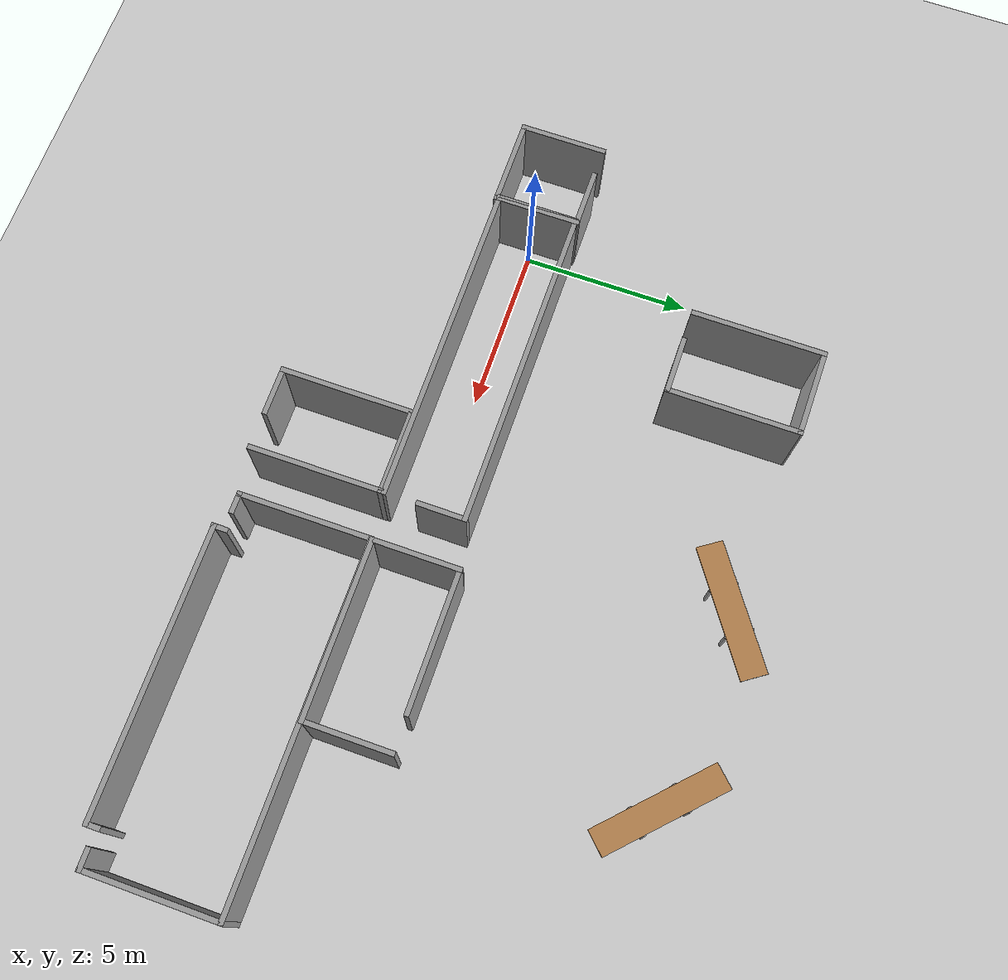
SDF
<sdf version="1.6">
 <world name="default">
  <model name="ground_plane">
   <static>1</static>
   <link name="link">
    <collision name="collision">
     <geometry><plane><normal>0 0 1</normal><size>100 100</size></plane></geometry>
     <surface>
      <contact><collide_bitmask>65535</collide_bitmask></contact>
      <friction><ode><mu>100</mu><mu2>50</mu2></ode></friction>
     </surface>
    </collision>
    <visual name="visual">
     <cast_shadows>0</cast_shadows>
     <geometry><plane><normal>0 0 1</normal><size>100 100</size></plane></geometry>
     <material>
      <script><uri>file://media/materials/scripts/gazebo.material</uri><name>Gazebo/Grey</name></script>
     </material>
    </visual>
   </link>
  </model>
  <model name="cubicle_3">
   <pose>8.03874 -3.16109 0 0 -0 0</pose>
   <link name="Wall_3">
    <collision name="Wall_3_Collision">
     <geometry><box><size>4 0.15 2.5</size></box></geometry>
     <pose>0 0 1.25 0 -0 0</pose>
    </collision>
    <visual name="Wall_3_Visual">
     <pose>0 0 1.25 0 -0 0</pose>
     <geometry><box><size>4 0.15 2.5</size></box></geometry>
     <material>
      <script><uri>file://media/materials/scripts/gazebo.material</uri><name>Gazebo/Grey</name></script>
      <ambient>1 1 1 1</ambient>
     </material>
     <meta><layer>0</layer></meta>
    </visual>
    <pose>-1.225 0 0 0 -0 -1.5708</pose>
   </link>
   <link name="Wall_4">
    <collision name="Wall_4_Collision">
     <geometry><box><size>1.5 0.15 2.5</size></box></geometry>
     <pose>0 0 1.25 0 -0 0</pose>
    </collision>
    <visual name="Wall_4_Visual">
     <pose>0 0 1.25 0 -0 0</pose>
     <geometry><box><size>1.5 0.15 2.5</size></box></geometry>
     <material>
      <script><uri>file://media/materials/scripts/gazebo.material</uri><name>Gazebo/Grey</name></script>
      <ambient>1 1 1 1</ambient>
     </material>
     <meta><layer>0</layer></meta>
    </visual>
    <pose>-0.55 -1.925 0 0 -0 0</pose>
   </link>
   <link name="Wall_6">
    <collision name="Wall_6_Collision">
     <geometry><box><size>4 0.15 2.5</size></box></geometry>
     <pose>0 0 1.25 0 -0 0</pose>
    </collision>
    <visual name="Wall_6_Visual">
     <pose>0 0 1.25 0 -0 0</pose>
     <geometry><box><size>4 0.15 2.5</size></box></geometry>
     <material>
      <script><uri>file://media/materials/scripts/gazebo.material</uri><name>Gazebo/Grey</name></script>
      <ambient>1 1 1 1</ambient>
     </material>
     <meta><layer>0</layer></meta>
    </visual>
    <pose>1.225 0 0 0 -0 1.5708</pose>
   </link>
   <link name="Wall_7">
    <collision name="Wall_7_Collision">
     <geometry><box><size>2.6 0.15 2.5</size></box></geometry>
     <pose>0 0 1.25 0 -0 0</pose>
    </collision>
    <visual name="Wall_7_Visual">
     <pose>0 0 1.25 0 -0 0</pose>
     <geometry><box><size>2.6 0.15 2.5</size></box></geometry>
     <material>
      <script><uri>file://media/materials/scripts/gazebo.material</uri><name>Gazebo/Grey</name></script>
      <ambient>1 1 1 1</ambient>
     </material>
     <meta><layer>0</layer></meta>
    </visual>
    <pose>-0 1.925 0 0 -0 3.14159</pose>
   </link>
   <static>1</static>
  </model>
  <model name="102Room">
   <pose>15.8772 -3.07536 0 0 -0 0</pose>
   <link name="Wall_11">
    <collision name="Wall_11_Collision">
     <geometry><box><size>8.5 0.15 2.5</size></box></geometry>
     <pose>0 0 1.25 0 -0 0</pose>
    </collision>
    <visual name="Wall_11_Visual">
     <pose>0 0 1.25 0 -0 0</pose>
     <geometry><box><size>8.5 0.15 2.5</size></box></geometry>
     <material>
      <script><uri>file://media/materials/scripts/gazebo.material</uri><name>Gazebo/Grey</name></script>
      <ambient>1 1 1 1</ambient>
     </material>
     <meta><layer>0</layer></meta>
    </visual>
    <pose>-0.003989 -2.07244 0 0 -0 0</pose>
   </link>
   <link name="Wall_13">
    <collision name="Wall_13_Collision">
     <geometry><box><size>0.667 0.15 2.5</size></box></geometry>
     <pose>0 0 1.25 0 -0 0</pose>
    </collision>
    <visual name="Wall_13_Visual">
     <pose>0 0 1.25 0 -0 0</pose>
     <geometry><box><size>0.667 0.15 2.5</size></box></geometry>
     <material>
      <script><uri>file://media/materials/scripts/gazebo.material</uri><name>Gazebo/Grey</name></script>
      <ambient>1 1 1 1</ambient>
     </material>
     <meta><layer>0</layer></meta>
    </visual>
    <pose>4.99225 -1.76994 0 0 -0 0</pose>
   </link>
   <link name="Wall_15">
    <collision name="Wall_15_Collision">
     <geometry><box><size>4 0.15 2.5</size></box></geometry>
     <pose>0 0 1.25 0 -0 0</pose>
    </collision>
    <visual name="Wall_15_Visual">
     <pose>0 0 1.25 0 -0 0</pose>
     <geometry><box><size>4 0.15 2.5</size></box></geometry>
     <material>
      <script><uri>file://media/materials/scripts/gazebo.material</uri><name>Gazebo/Grey</name></script>
      <ambient>1 1 1 1</ambient>
     </material>
     <meta><layer>0</layer></meta>
    </visual>
    <pose>5.25087 0.155063 0 0 -0 1.57073</pose>
   </link>
   <link name="Wall_16">
    <collision name="Wall_16_Collision">
     <geometry><box><size>10.652 0.15 2.5</size></box></geometry>
     <pose>0 0 1.25 0 -0 0</pose>
    </collision>
    <visual name="Wall_16_Visual">
     <pose>0 0 1.25 0 -0 0</pose>
     <geometry><box><size>10.652 0.15 2.5</size></box></geometry>
     <material>
      <script><uri>file://media/materials/scripts/gazebo.material</uri><name>Gazebo/Grey</name></script>
      <ambient>1 1 1 1</ambient>
     </material>
     <meta><layer>0</layer></meta>
    </visual>
    <pose>-2e-06 2.08006 0 0 -0 3.14159</pose>
   </link>
   <link name="Wall_17">
    <collision name="Wall_17_Collision">
     <geometry><box><size>4 0.15 2.5</size></box></geometry>
     <pose>0 0 1.25 0 -0 0</pose>
    </collision>
    <visual name="Wall_17_Visual">
     <pose>0 0 1.25 0 -0 0</pose>
     <geometry><box><size>4 0.15 2.5</size></box></geometry>
     <material>
      <script><uri>file://media/materials/scripts/gazebo.material</uri><name>Gazebo/Grey</name></script>
      <ambient>1 1 1 1</ambient>
     </material>
     <meta><layer>0</layer></meta>
    </visual>
    <pose>-5.251 0.155063 0 0 -0 -1.5708</pose>
   </link>
   <link name="Wall_23">
    <collision name="Wall_23_Collision">
     <geometry><box><size>0.5 0.15 2.5</size></box></geometry>
     <pose>0 0 1.25 0 -0 0</pose>
    </collision>
    <visual name="Wall_23_Visual">
     <pose>0 0 1.25 0 -0 0</pose>
     <geometry><box><size>0.5 0.15 2.5</size></box></geometry>
     <material>
      <script><uri>file://media/materials/scripts/gazebo.material</uri><name>Gazebo/Grey</name></script>
      <ambient>1 1 1 1</ambient>
     </material>
     <meta><layer>0</layer></meta>
    </visual>
    <pose>-4.17899 -1.90507 0 0 -0 1.5708</pose>
   </link>
   <link name="Wall_25">
    <collision name="Wall_25_Collision">
     <geometry><box><size>0.469506 0.15 2.5</size></box></geometry>
     <pose>0 0 1.25 0 -0 0</pose>
    </collision>
    <visual name="Wall_25_Visual">
     <pose>0 0 1.25 0 -0 0</pose>
     <geometry><box><size>0.469506 0.15 2.5</size></box></geometry>
     <material>
      <script><uri>file://media/materials/scripts/gazebo.material</uri><name>Gazebo/Grey</name></script>
      <ambient>1 1 1 1</ambient>
     </material>
     <meta><layer>0</layer></meta>
    </visual>
    <pose>4.17101 -1.90507 0 0 -0 1.5708</pose>
   </link>
   <link name="Wall_9">
    <collision name="Wall_9_Collision">
     <geometry><box><size>0.667 0.15 2.5</size></box></geometry>
     <pose>0 0 1.25 0 -0 0</pose>
    </collision>
    <visual name="Wall_9_Visual">
     <pose>0 0 1.25 0 -0 0</pose>
     <geometry><box><size>0.667 0.15 2.5</size></box></geometry>
     <material>
      <script><uri>file://media/materials/scripts/gazebo.material</uri><name>Gazebo/Grey</name></script>
      <ambient>1 1 1 1</ambient>
     </material>
     <meta><layer>0</layer></meta>
    </visual>
    <pose>-4.9925 -1.76994 0 0 -0 0</pose>
   </link>
   <static>1</static>
  </model>
  <model name="104_0">
   <pose>-1.62055 0.02289 0 0 -0 0</pose>
   <link name="Wall_11">
    <collision name="Wall_11_Collision">
     <geometry><box><size>2.667 0.15 2.5</size></box></geometry>
     <pose>0 0 1.25 0 -0 0</pose>
    </collision>
    <visual name="Wall_11_Visual">
     <pose>0 0 1.25 0 -0 0</pose>
     <geometry><box><size>2.667 0.15 2.5</size></box></geometry>
     <material>
      <script><uri>file://media/materials/scripts/gazebo.material</uri><name>Gazebo/Grey</name></script>
      <ambient>1 1 1 1</ambient>
     </material>
     <meta><layer>0</layer></meta>
    </visual>
    <pose>0 -1.23537 0 0 -0 0</pose>
   </link>
   <link name="Wall_12">
    <collision name="Wall_12_Collision">
     <geometry><box><size>2.62074 0.15 2.5</size></box></geometry>
     <pose>0 0 1.25 0 -0 0</pose>
    </collision>
    <visual name="Wall_12_Visual">
     <pose>0 0 1.25 0 -0 0</pose>
     <geometry><box><size>2.62074 0.15 2.5</size></box></geometry>
     <material>
      <script><uri>file://media/materials/scripts/gazebo.material</uri><name>Gazebo/Grey</name></script>
      <ambient>1 1 1 1</ambient>
     </material>
     <meta><layer>0</layer></meta>
    </visual>
    <pose>1.2585 0 0 0 -0 1.5708</pose>
   </link>
   <link name="Wall_14">
    <collision name="Wall_14_Collision">
     <geometry><box><size>2.62074 0.15 2.5</size></box></geometry>
     <pose>0 0 1.25 0 -0 0</pose>
    </collision>
    <visual name="Wall_14_Visual">
     <pose>0 0 1.25 0 -0 0</pose>
     <geometry><box><size>2.62074 0.15 2.5</size></box></geometry>
     <material>
      <script><uri>file://media/materials/scripts/gazebo.material</uri><name>Gazebo/Grey</name></script>
      <ambient>1 1 1 1</ambient>
     </material>
     <meta><layer>0</layer></meta>
    </visual>
    <pose>-1.2585 0 0 0 -0 -1.5708</pose>
   </link>
   <link name="Wall_18">
    <collision name="Wall_18_Collision">
     <geometry><box><size>1.8 0.15 2.5</size></box></geometry>
     <pose>0 0 1.25 0 -0 0</pose>
    </collision>
    <visual name="Wall_18_Visual">
     <pose>0 0 1.25 0 -0 0</pose>
     <geometry><box><size>1.8 0.15 2.5</size></box></geometry>
     <material>
      <script><uri>file://media/materials/scripts/gazebo.material</uri><name>Gazebo/Grey</name></script>
      <ambient>1 1 1 1</ambient>
     </material>
     <meta><layer>0</layer></meta>
    </visual>
    <pose>0.433499 1.23537 0 0 -0 3.14159</pose>
   </link>
   <static>1</static>
  </model>
  <model name="tables">
   <link name="link_clone_clone_0_clone_1_clone">
    <inertial>
     <inertia><ixx>0</ixx><ixy>0</ixy><ixz>0</ixz><iyy>0</iyy><iyz>0</iyz><izz>0</izz></inertia>
     <mass>0</mass>
    </inertial>
    <pose>2.80476 -6.06691 0 0 0 -0.769288</pose>
    <visual name="back_right_leg">
     <pose>-0.68 -0.38 0.5 0 -0 0</pose>
     <geometry><cylinder><radius>0.05252</radius><length>1</length></cylinder></geometry>
     <material>
      <script><uri>file://media/materials/scripts/gazebo.material</uri><name>Gazebo/Grey</name></script>
      <shader type="pixel"/>
     </material>
    </visual>
    <visual name="back_left_leg">
     <pose>-0.68 0.38 0.5 0 -0 0</pose>
     <geometry><cylinder><radius>0.05252</radius><length>1</length></cylinder></geometry>
     <material>
      <script><uri>file://media/materials/scripts/gazebo.material</uri><name>Gazebo/Grey</name></script>
      <shader type="pixel"/>
     </material>
    </visual>
    <visual name="front_left_leg">
     <pose>0.68 0.38 0.5 0 -0 0</pose>
     <geometry><cylinder><radius>0.05252</radius><length>1</length></cylinder></geometry>
     <material>
      <script><uri>file://media/materials/scripts/gazebo.material</uri><name>Gazebo/Grey</name></script>
      <shader type="pixel"/>
     </material>
    </visual>
    <visual name="front_right_leg">
     <pose>0.68 -0.38 0.5 0 -0 0</pose>
     <geometry><cylinder><radius>0.05252</radius><length>1</length></cylinder></geometry>
     <material>
      <script><uri>file://media/materials/scripts/gazebo.material</uri><name>Gazebo/Grey</name></script>
      <shader type="pixel"/>
     </material>
    </visual>
    <visual name="visual1">
     <pose>0 0 1 0 -0 0</pose>
     <geometry><box><size>3.93335 0.8 0.03</size></box></geometry>
     <material>
      <script><uri>file://media/materials/scripts/gazebo.material</uri><name>Gazebo/Wood</name></script>
      <shader type="pixel"/>
     </material>
    </visual>
    <collision name="surface">
     <pose>0 0 1 0 -0 0</pose>
     <geometry><box><size>3.93335 0.8 0.03</size></box></geometry>
     <surface>
      <friction>
       <ode><mu>1</mu><mu2>1</mu2><fdir1>0 0 0</fdir1><slip1>0</slip1><slip2>0</slip2></ode>
       <torsional>
        <coefficient>1</coefficient>
        <patch_radius>0</patch_radius>
        <surface_radius>0</surface_radius>
        <use_patch_radius>1</use_patch_radius>
        <ode><slip>0</slip></ode>
       </torsional>
      </friction>
      <bounce><restitution_coefficient>0</restitution_coefficient><threshold>1e+06</threshold></bounce>
      <contact>
       <collide_without_contact>0</collide_without_contact>
       <collide_without_contact_bitmask>1</collide_without_contact_bitmask>
       <collide_bitmask>1</collide_bitmask>
       <ode>
        <soft_cfm>0</soft_cfm>
        <soft_erp>0.2</soft_erp>
        <kp>1e+13</kp>
        <kd>1</kd>
        <max_vel>0.01</max_vel>
        <min_depth>0</min_depth>
       </ode>
       <bullet>
        <split_impulse>1</split_impulse>
        <split_impulse_penetration_threshold>-0.01</split_impulse_penetration_threshold>
        <soft_cfm>0</soft_cfm>
        <soft_erp>0.2</soft_erp>
        <kp>1e+13</kp>
        <kd>1</kd>
       </bullet>
      </contact>
     </surface>
    </collision>
    <collision name="front_left_leg_0">
     <pose>0.68 0.38 0.5 0 -0 0</pose>
     <geometry><cylinder><radius>0.05252</radius><length>1</length></cylinder></geometry>
     <surface>
      <friction>
       <ode><mu>1</mu><mu2>1</mu2><fdir1>0 0 0</fdir1><slip1>0</slip1><slip2>0</slip2></ode>
       <torsional>
        <coefficient>1</coefficient>
        <patch_radius>0</patch_radius>
        <surface_radius>0</surface_radius>
        <use_patch_radius>1</use_patch_radius>
        <ode><slip>0</slip></ode>
       </torsional>
      </friction>
      <bounce><restitution_coefficient>0</restitution_coefficient><threshold>1e+06</threshold></bounce>
      <contact>
       <collide_without_contact>0</collide_without_contact>
       <collide_without_contact_bitmask>1</collide_without_contact_bitmask>
       <collide_bitmask>1</collide_bitmask>
       <ode>
        <soft_cfm>0</soft_cfm>
        <soft_erp>0.2</soft_erp>
        <kp>1e+13</kp>
        <kd>1</kd>
        <max_vel>0.01</max_vel>
        <min_depth>0</min_depth>
       </ode>
       <bullet>
        <split_impulse>1</split_impulse>
        <split_impulse_penetration_threshold>-0.01</split_impulse_penetration_threshold>
        <soft_cfm>0</soft_cfm>
        <soft_erp>0.2</soft_erp>
        <kp>1e+13</kp>
        <kd>1</kd>
       </bullet>
      </contact>
     </surface>
    </collision>
    <collision name="back_left_leg_0">
     <pose>-0.68 0.38 0.5 0 -0 0</pose>
     <geometry><cylinder><radius>0.05252</radius><length>1</length></cylinder></geometry>
     <surface>
      <friction>
       <ode><mu>1</mu><mu2>1</mu2><fdir1>0 0 0</fdir1><slip1>0</slip1><slip2>0</slip2></ode>
       <torsional>
        <coefficient>1</coefficient>
        <patch_radius>0</patch_radius>
        <surface_radius>0</surface_radius>
        <use_patch_radius>1</use_patch_radius>
        <ode><slip>0</slip></ode>
       </torsional>
      </friction>
      <bounce><restitution_coefficient>0</restitution_coefficient><threshold>1e+06</threshold></bounce>
      <contact>
       <collide_without_contact>0</collide_without_contact>
       <collide_without_contact_bitmask>1</collide_without_contact_bitmask>
       <collide_bitmask>1</collide_bitmask>
       <ode>
        <soft_cfm>0</soft_cfm>
        <soft_erp>0.2</soft_erp>
        <kp>1e+13</kp>
        <kd>1</kd>
        <max_vel>0.01</max_vel>
        <min_depth>0</min_depth>
       </ode>
       <bullet>
        <split_impulse>1</split_impulse>
        <split_impulse_penetration_threshold>-0.01</split_impulse_penetration_threshold>
        <soft_cfm>0</soft_cfm>
        <soft_erp>0.2</soft_erp>
        <kp>1e+13</kp>
        <kd>1</kd>
       </bullet>
      </contact>
     </surface>
    </collision>
    <collision name="front_right_leg_0">
     <pose>0.68 -0.38 0.5 0 -0 0</pose>
     <geometry><cylinder><radius>0.05252</radius><length>1</length></cylinder></geometry>
     <surface>
      <friction>
       <ode><mu>1</mu><mu2>1</mu2><fdir1>0 0 0</fdir1><slip1>0</slip1><slip2>0</slip2></ode>
       <torsional>
        <coefficient>1</coefficient>
        <patch_radius>0</patch_radius>
        <surface_radius>0</surface_radius>
        <use_patch_radius>1</use_patch_radius>
        <ode><slip>0</slip></ode>
       </torsional>
      </friction>
      <bounce><restitution_coefficient>0</restitution_coefficient><threshold>1e+06</threshold></bounce>
      <contact>
       <collide_without_contact>0</collide_without_contact>
       <collide_without_contact_bitmask>1</collide_without_contact_bitmask>
       <collide_bitmask>1</collide_bitmask>
       <ode>
        <soft_cfm>0</soft_cfm>
        <soft_erp>0.2</soft_erp>
        <kp>1e+13</kp>
        <kd>1</kd>
        <max_vel>0.01</max_vel>
        <min_depth>0</min_depth>
       </ode>
       <bullet>
        <split_impulse>1</split_impulse>
        <split_impulse_penetration_threshold>-0.01</split_impulse_penetration_threshold>
        <soft_cfm>0</soft_cfm>
        <soft_erp>0.2</soft_erp>
        <kp>1e+13</kp>
        <kd>1</kd>
       </bullet>
      </contact>
     </surface>
    </collision>
    <collision name="back_right_leg_0">
     <pose>-0.68 -0.38 0.5 0 -0 0</pose>
     <geometry><cylinder><radius>0.05252</radius><length>1</length></cylinder></geometry>
     <surface>
      <friction>
       <ode><mu>1</mu><mu2>1</mu2><fdir1>0 0 0</fdir1><slip1>0</slip1><slip2>0</slip2></ode>
       <torsional>
        <coefficient>1</coefficient>
        <patch_radius>0</patch_radius>
        <surface_radius>0</surface_radius>
        <use_patch_radius>1</use_patch_radius>
        <ode><slip>0</slip></ode>
       </torsional>
      </friction>
      <bounce><restitution_coefficient>0</restitution_coefficient><threshold>1e+06</threshold></bounce>
      <contact>
       <collide_without_contact>0</collide_without_contact>
       <collide_without_contact_bitmask>1</collide_without_contact_bitmask>
       <collide_bitmask>1</collide_bitmask>
       <ode>
        <soft_cfm>0</soft_cfm>
        <soft_erp>0.2</soft_erp>
        <kp>1e+13</kp>
        <kd>1</kd>
        <max_vel>0.01</max_vel>
        <min_depth>0</min_depth>
       </ode>
       <bullet>
        <split_impulse>1</split_impulse>
        <split_impulse_penetration_threshold>-0.01</split_impulse_penetration_threshold>
        <soft_cfm>0</soft_cfm>
        <soft_erp>0.2</soft_erp>
        <kp>1e+13</kp>
        <kd>1</kd>
       </bullet>
      </contact>
     </surface>
    </collision>
   </link>
   <link name="link_clone_clone_0_clone_1_clone_0">
    <inertial>
     <inertia><ixx>0</ixx><ixy>0</ixy><ixz>0</ixz><iyy>0</iyy><iyz>0</iyz><izz>0</izz></inertia>
     <mass>0</mass>
    </inertial>
    <pose>-3.02405 -5.78896 0 0 -0 0.604453</pose>
    <visual name="back_right_leg">
     <pose>-0.68 -0.38 0.5 0 -0 0</pose>
     <geometry><cylinder><radius>0.05252</radius><length>1</length></cylinder></geometry>
     <material>
      <script><uri>file://media/materials/scripts/gazebo.material</uri><name>Gazebo/Grey</name></script>
      <shader type="pixel"/>
     </material>
    </visual>
    <visual name="back_left_leg">
     <pose>-0.68 0.38 0.5 0 -0 0</pose>
     <geometry><cylinder><radius>0.05252</radius><length>1</length></cylinder></geometry>
     <material>
      <script><uri>file://media/materials/scripts/gazebo.material</uri><name>Gazebo/Grey</name></script>
      <shader type="pixel"/>
     </material>
    </visual>
    <visual name="front_left_leg">
     <pose>0.68 0.38 0.5 0 -0 0</pose>
     <geometry><cylinder><radius>0.05252</radius><length>1</length></cylinder></geometry>
     <material>
      <script><uri>file://media/materials/scripts/gazebo.material</uri><name>Gazebo/Grey</name></script>
      <shader type="pixel"/>
     </material>
    </visual>
    <visual name="front_right_leg">
     <pose>0.68 -0.38 0.5 0 -0 0</pose>
     <geometry><cylinder><radius>0.05252</radius><length>1</length></cylinder></geometry>
     <material>
      <script><uri>file://media/materials/scripts/gazebo.material</uri><name>Gazebo/Grey</name></script>
      <shader type="pixel"/>
     </material>
    </visual>
    <visual name="visual1">
     <pose>0 0 1 0 -0 0</pose>
     <geometry><box><size>3.93335 0.8 0.03</size></box></geometry>
     <material>
      <script><uri>file://media/materials/scripts/gazebo.material</uri><name>Gazebo/Wood</name></script>
      <shader type="pixel"/>
     </material>
    </visual>
    <collision name="back_left_leg_0">
     <pose>-0.68 0.38 0.5 0 -0 0</pose>
     <geometry><cylinder><radius>0.05252</radius><length>1</length></cylinder></geometry>
     <surface>
      <friction>
       <ode><mu>1</mu><mu2>1</mu2><fdir1>0 0 0</fdir1><slip1>0</slip1><slip2>0</slip2></ode>
       <torsional>
        <coefficient>1</coefficient>
        <patch_radius>0</patch_radius>
        <surface_radius>0</surface_radius>
        <use_patch_radius>1</use_patch_radius>
        <ode><slip>0</slip></ode>
       </torsional>
      </friction>
      <bounce><restitution_coefficient>0</restitution_coefficient><threshold>1e+06</threshold></bounce>
      <contact>
       <collide_without_contact>0</collide_without_contact>
       <collide_without_contact_bitmask>1</collide_without_contact_bitmask>
       <collide_bitmask>1</collide_bitmask>
       <ode>
        <soft_cfm>0</soft_cfm>
        <soft_erp>0.2</soft_erp>
        <kp>1e+13</kp>
        <kd>1</kd>
        <max_vel>0.01</max_vel>
        <min_depth>0</min_depth>
       </ode>
       <bullet>
        <split_impulse>1</split_impulse>
        <split_impulse_penetration_threshold>-0.01</split_impulse_penetration_threshold>
        <soft_cfm>0</soft_cfm>
        <soft_erp>0.2</soft_erp>
        <kp>1e+13</kp>
        <kd>1</kd>
       </bullet>
      </contact>
     </surface>
    </collision>
    <collision name="surface">
     <pose>0 0 1 0 -0 0</pose>
     <geometry><box><size>3.93335 0.8 0.03</size></box></geometry>
     <surface>
      <friction>
       <ode><mu>1</mu><mu2>1</mu2><fdir1>0 0 0</fdir1><slip1>0</slip1><slip2>0</slip2></ode>
       <torsional>
        <coefficient>1</coefficient>
        <patch_radius>0</patch_radius>
        <surface_radius>0</surface_radius>
        <use_patch_radius>1</use_patch_radius>
        <ode><slip>0</slip></ode>
       </torsional>
      </friction>
      <bounce><restitution_coefficient>0</restitution_coefficient><threshold>1e+06</threshold></bounce>
      <contact>
       <collide_without_contact>0</collide_without_contact>
       <collide_without_contact_bitmask>1</collide_without_contact_bitmask>
       <collide_bitmask>1</collide_bitmask>
       <ode>
        <soft_cfm>0</soft_cfm>
        <soft_erp>0.2</soft_erp>
        <kp>1e+13</kp>
        <kd>1</kd>
        <max_vel>0.01</max_vel>
        <min_depth>0</min_depth>
       </ode>
       <bullet>
        <split_impulse>1</split_impulse>
        <split_impulse_penetration_threshold>-0.01</split_impulse_penetration_threshold>
        <soft_cfm>0</soft_cfm>
        <soft_erp>0.2</soft_erp>
        <kp>1e+13</kp>
        <kd>1</kd>
       </bullet>
      </contact>
     </surface>
    </collision>
    <collision name="front_left_leg_0">
     <pose>0.68 0.38 0.5 0 -0 0</pose>
     <geometry><cylinder><radius>0.05252</radius><length>1</length></cylinder></geometry>
     <surface>
      <friction>
       <ode><mu>1</mu><mu2>1</mu2><fdir1>0 0 0</fdir1><slip1>0</slip1><slip2>0</slip2></ode>
       <torsional>
        <coefficient>1</coefficient>
        <patch_radius>0</patch_radius>
        <surface_radius>0</surface_radius>
        <use_patch_radius>1</use_patch_radius>
        <ode><slip>0</slip></ode>
       </torsional>
      </friction>
      <bounce><restitution_coefficient>0</restitution_coefficient><threshold>1e+06</threshold></bounce>
      <contact>
       <collide_without_contact>0</collide_without_contact>
       <collide_without_contact_bitmask>1</collide_without_contact_bitmask>
       <collide_bitmask>1</collide_bitmask>
       <ode>
        <soft_cfm>0</soft_cfm>
        <soft_erp>0.2</soft_erp>
        <kp>1e+13</kp>
        <kd>1</kd>
        <max_vel>0.01</max_vel>
        <min_depth>0</min_depth>
       </ode>
       <bullet>
        <split_impulse>1</split_impulse>
        <split_impulse_penetration_threshold>-0.01</split_impulse_penetration_threshold>
        <soft_cfm>0</soft_cfm>
        <soft_erp>0.2</soft_erp>
        <kp>1e+13</kp>
        <kd>1</kd>
       </bullet>
      </contact>
     </surface>
    </collision>
    <collision name="front_right_leg_0">
     <pose>0.68 -0.38 0.5 0 -0 0</pose>
     <geometry><cylinder><radius>0.05252</radius><length>1</length></cylinder></geometry>
     <surface>
      <friction>
       <ode><mu>1</mu><mu2>1</mu2><fdir1>0 0 0</fdir1><slip1>0</slip1><slip2>0</slip2></ode>
       <torsional>
        <coefficient>1</coefficient>
        <patch_radius>0</patch_radius>
        <surface_radius>0</surface_radius>
        <use_patch_radius>1</use_patch_radius>
        <ode><slip>0</slip></ode>
       </torsional>
      </friction>
      <bounce><restitution_coefficient>0</restitution_coefficient><threshold>1e+06</threshold></bounce>
      <contact>
       <collide_without_contact>0</collide_without_contact>
       <collide_without_contact_bitmask>1</collide_without_contact_bitmask>
       <collide_bitmask>1</collide_bitmask>
       <ode>
        <soft_cfm>0</soft_cfm>
        <soft_erp>0.2</soft_erp>
        <kp>1e+13</kp>
        <kd>1</kd>
        <max_vel>0.01</max_vel>
        <min_depth>0</min_depth>
       </ode>
       <bullet>
        <split_impulse>1</split_impulse>
        <split_impulse_penetration_threshold>-0.01</split_impulse_penetration_threshold>
        <soft_cfm>0</soft_cfm>
        <soft_erp>0.2</soft_erp>
        <kp>1e+13</kp>
        <kd>1</kd>
       </bullet>
      </contact>
     </surface>
    </collision>
    <collision name="back_right_leg_0">
     <pose>-0.68 -0.38 0.5 0 -0 0</pose>
     <geometry><cylinder><radius>0.05252</radius><length>1</length></cylinder></geometry>
     <surface>
      <friction>
       <ode><mu>1</mu><mu2>1</mu2><fdir1>0 0 0</fdir1><slip1>0</slip1><slip2>0</slip2></ode>
       <torsional>
        <coefficient>1</coefficient>
        <patch_radius>0</patch_radius>
        <surface_radius>0</surface_radius>
        <use_patch_radius>1</use_patch_radius>
        <ode><slip>0</slip></ode>
       </torsional>
      </friction>
      <bounce><restitution_coefficient>0</restitution_coefficient><threshold>1e+06</threshold></bounce>
      <contact>
       <collide_without_contact>0</collide_without_contact>
       <collide_without_contact_bitmask>1</collide_without_contact_bitmask>
       <collide_bitmask>1</collide_bitmask>
       <ode>
        <soft_cfm>0</soft_cfm>
        <soft_erp>0.2</soft_erp>
        <kp>1e+13</kp>
        <kd>1</kd>
        <max_vel>0.01</max_vel>
        <min_depth>0</min_depth>
       </ode>
       <bullet>
        <split_impulse>1</split_impulse>
        <split_impulse_penetration_threshold>-0.01</split_impulse_penetration_threshold>
        <soft_cfm>0</soft_cfm>
        <soft_erp>0.2</soft_erp>
        <kp>1e+13</kp>
        <kd>1</kd>
       </bullet>
      </contact>
     </surface>
    </collision>
   </link>
   <static>1</static>
   <pose>11.8893 14.6757 0 0 -0 0</pose>
  </model>
  <model name="105">
   <link name="Wall_49">
    <pose>1.25871 -0.012037 0 0 -0 1.5708</pose>
    <visual name="Wall_49_Visual">
     <pose>0 0 1.25 0 -0 0</pose>
     <geometry><box><size>4 0.15 2.5</size></box></geometry>
     <material>
      <script><uri>file://media/materials/scripts/gazebo.material</uri><name>Gazebo/Grey</name></script>
      <ambient>1 1 1 1</ambient>
      <shader type="pixel"/>
     </material>
     <meta><layer>0</layer></meta>
    </visual>
    <collision name="Wall_49_Collision">
     <pose>0 0 1.25 0 -0 0</pose>
     <geometry><box><size>4 0.15 2.5</size></box></geometry>
     <surface>
      <friction>
       <ode><mu>1</mu><mu2>1</mu2><fdir1>0 0 0</fdir1><slip1>0</slip1><slip2>0</slip2></ode>
       <torsional>
        <coefficient>1</coefficient>
        <patch_radius>0</patch_radius>
        <surface_radius>0</surface_radius>
        <use_patch_radius>1</use_patch_radius>
        <ode><slip>0</slip></ode>
       </torsional>
      </friction>
      <bounce><restitution_coefficient>0</restitution_coefficient><threshold>1e+06</threshold></bounce>
      <contact>
       <collide_without_contact>0</collide_without_contact>
       <collide_without_contact_bitmask>1</collide_without_contact_bitmask>
       <collide_bitmask>1</collide_bitmask>
       <ode>
        <soft_cfm>0</soft_cfm>
        <soft_erp>0.2</soft_erp>
        <kp>1e+13</kp>
        <kd>1</kd>
        <max_vel>0.01</max_vel>
        <min_depth>0</min_depth>
       </ode>
       <bullet>
        <split_impulse>1</split_impulse>
        <split_impulse_penetration_threshold>-0.01</split_impulse_penetration_threshold>
        <soft_cfm>0</soft_cfm>
        <soft_erp>0.2</soft_erp>
        <kp>1e+13</kp>
        <kd>1</kd>
       </bullet>
      </contact>
     </surface>
    </collision>
   </link>
   <link name="Wall_50">
    <pose>0 1.92465 0 0 -0 3.1323</pose>
    <visual name="Wall_50_Visual">
     <pose>0 0 1.25 0 -0 0</pose>
     <geometry><box><size>2.667 0.15 2.5</size></box></geometry>
     <material>
      <script><uri>file://media/materials/scripts/gazebo.material</uri><name>Gazebo/Grey</name></script>
      <ambient>1 1 1 1</ambient>
      <shader type="pixel"/>
     </material>
     <meta><layer>0</layer></meta>
    </visual>
    <collision name="Wall_50_Collision">
     <pose>0 0 1.25 0 -0 0</pose>
     <geometry><box><size>2.667 0.15 2.5</size></box></geometry>
     <surface>
      <friction>
       <ode><mu>1</mu><mu2>1</mu2><fdir1>0 0 0</fdir1><slip1>0</slip1><slip2>0</slip2></ode>
       <torsional>
        <coefficient>1</coefficient>
        <patch_radius>0</patch_radius>
        <surface_radius>0</surface_radius>
        <use_patch_radius>1</use_patch_radius>
        <ode><slip>0</slip></ode>
       </torsional>
      </friction>
      <bounce><restitution_coefficient>0</restitution_coefficient><threshold>1e+06</threshold></bounce>
      <contact>
       <collide_without_contact>0</collide_without_contact>
       <collide_without_contact_bitmask>1</collide_without_contact_bitmask>
       <collide_bitmask>1</collide_bitmask>
       <ode>
        <soft_cfm>0</soft_cfm>
        <soft_erp>0.2</soft_erp>
        <kp>1e+13</kp>
        <kd>1</kd>
        <max_vel>0.01</max_vel>
        <min_depth>0</min_depth>
       </ode>
       <bullet>
        <split_impulse>1</split_impulse>
        <split_impulse_penetration_threshold>-0.01</split_impulse_penetration_threshold>
        <soft_cfm>0</soft_cfm>
        <soft_erp>0.2</soft_erp>
        <kp>1e+13</kp>
        <kd>1</kd>
       </bullet>
      </contact>
     </surface>
    </collision>
   </link>
   <link name="Wall_51">
    <pose>-1.25871 0.011347 0 0 0 -1.5708</pose>
    <visual name="Wall_51_Visual">
     <pose>0 0 1.25 0 -0 0</pose>
     <geometry><box><size>4 0.15 2.5</size></box></geometry>
     <material>
      <script><uri>file://media/materials/scripts/gazebo.material</uri><name>Gazebo/Grey</name></script>
      <ambient>1 1 1 1</ambient>
      <shader type="pixel"/>
     </material>
     <meta><layer>0</layer></meta>
    </visual>
    <collision name="Wall_51_Collision">
     <pose>0 0 1.25 0 -0 0</pose>
     <geometry><box><size>4 0.15 2.5</size></box></geometry>
     <surface>
      <friction>
       <ode><mu>1</mu><mu2>1</mu2><fdir1>0 0 0</fdir1><slip1>0</slip1><slip2>0</slip2></ode>
       <torsional>
        <coefficient>1</coefficient>
        <patch_radius>0</patch_radius>
        <surface_radius>0</surface_radius>
        <use_patch_radius>1</use_patch_radius>
        <ode><slip>0</slip></ode>
       </torsional>
      </friction>
      <bounce><restitution_coefficient>0</restitution_coefficient><threshold>1e+06</threshold></bounce>
      <contact>
       <collide_without_contact>0</collide_without_contact>
       <collide_without_contact_bitmask>1</collide_without_contact_bitmask>
       <collide_bitmask>1</collide_bitmask>
       <ode>
        <soft_cfm>0</soft_cfm>
        <soft_erp>0.2</soft_erp>
        <kp>1e+13</kp>
        <kd>1</kd>
        <max_vel>0.01</max_vel>
        <min_depth>0</min_depth>
       </ode>
       <bullet>
        <split_impulse>1</split_impulse>
        <split_impulse_penetration_threshold>-0.01</split_impulse_penetration_threshold>
        <soft_cfm>0</soft_cfm>
        <soft_erp>0.2</soft_erp>
        <kp>1e+13</kp>
        <kd>1</kd>
       </bullet>
      </contact>
     </surface>
    </collision>
   </link>
   <link name="Wall_53">
    <pose>0.458708 -1.93704 0 0 -0 3.14159</pose>
    <visual name="Wall_53_Visual">
     <pose>0 0 1.25 0 -0 0</pose>
     <geometry><box><size>1.75 0.15 2.5</size></box></geometry>
     <material>
      <script><uri>file://media/materials/scripts/gazebo.material</uri><name>Gazebo/Grey</name></script>
      <ambient>1 1 1 1</ambient>
      <shader type="pixel"/>
     </material>
     <meta><layer>0</layer></meta>
    </visual>
    <collision name="Wall_53_Collision">
     <pose>0 0 1.25 0 -0 0</pose>
     <geometry><box><size>1.75 0.15 2.5</size></box></geometry>
     <surface>
      <friction>
       <ode><mu>1</mu><mu2>1</mu2><fdir1>0 0 0</fdir1><slip1>0</slip1><slip2>0</slip2></ode>
       <torsional>
        <coefficient>1</coefficient>
        <patch_radius>0</patch_radius>
        <surface_radius>0</surface_radius>
        <use_patch_radius>1</use_patch_radius>
        <ode><slip>0</slip></ode>
       </torsional>
      </friction>
      <bounce><restitution_coefficient>0</restitution_coefficient><threshold>1e+06</threshold></bounce>
      <contact>
       <collide_without_contact>0</collide_without_contact>
       <collide_without_contact_bitmask>1</collide_without_contact_bitmask>
       <collide_bitmask>1</collide_bitmask>
       <ode>
        <soft_cfm>0</soft_cfm>
        <soft_erp>0.2</soft_erp>
        <kp>1e+13</kp>
        <kd>1</kd>
        <max_vel>0.01</max_vel>
        <min_depth>0</min_depth>
       </ode>
       <bullet>
        <split_impulse>1</split_impulse>
        <split_impulse_penetration_threshold>-0.01</split_impulse_penetration_threshold>
        <soft_cfm>0</soft_cfm>
        <soft_erp>0.2</soft_erp>
        <kp>1e+13</kp>
        <kd>1</kd>
       </bullet>
      </contact>
     </surface>
    </collision>
   </link>
   <static>1</static>
   <pose>2.54516 7.22435 0 0 -0 0</pose>
  </model>
  <model name="102Long_0">
   <link name="Wall_27">
    <pose>0 -1.175 0 0 -0 3.7e-05</pose>
    <visual name="Wall_27_Visual">
     <pose>0 0 1.25 0 -0 0</pose>
     <geometry><box><size>9.809 0.15 2.5</size></box></geometry>
     <material>
      <script><uri>file://media/materials/scripts/gazebo.material</uri><name>Gazebo/Grey</name></script>
      <ambient>1 1 1 1</ambient>
      <shader type="pixel"/>
     </material>
     <meta><layer>0</layer></meta>
    </visual>
    <collision name="Wall_27_Collision">
     <pose>0 0 1.25 0 -0 0</pose>
     <geometry><box><size>9.809 0.15 2.5</size></box></geometry>
     <surface>
      <friction>
       <ode><mu>1</mu><mu2>1</mu2><fdir1>0 0 0</fdir1><slip1>0</slip1><slip2>0</slip2></ode>
       <torsional>
        <coefficient>1</coefficient>
        <patch_radius>0</patch_radius>
        <surface_radius>0</surface_radius>
        <use_patch_radius>1</use_patch_radius>
        <ode><slip>0</slip></ode>
       </torsional>
      </friction>
      <bounce><restitution_coefficient>0</restitution_coefficient><threshold>1e+06</threshold></bounce>
      <contact>
       <collide_without_contact>0</collide_without_contact>
       <collide_without_contact_bitmask>1</collide_without_contact_bitmask>
       <collide_bitmask>1</collide_bitmask>
       <ode>
        <soft_cfm>0</soft_cfm>
        <soft_erp>0.2</soft_erp>
        <kp>1e+13</kp>
        <kd>1</kd>
        <max_vel>0.01</max_vel>
        <min_depth>0</min_depth>
       </ode>
       <bullet>
        <split_impulse>1</split_impulse>
        <split_impulse_penetration_threshold>-0.01</split_impulse_penetration_threshold>
        <soft_cfm>0</soft_cfm>
        <soft_erp>0.2</soft_erp>
        <kp>1e+13</kp>
        <kd>1</kd>
       </bullet>
      </contact>
     </surface>
    </collision>
   </link>
   <link name="Wall_29">
    <pose>0 1.175 0 0 0 -3.14156</pose>
    <visual name="Wall_29_Visual">
     <pose>0 0 1.25 0 -0 0</pose>
     <geometry><box><size>9.80877 0.15 2.5</size></box></geometry>
     <material>
      <script><uri>file://media/materials/scripts/gazebo.material</uri><name>Gazebo/Grey</name></script>
      <ambient>1 1 1 1</ambient>
      <shader type="pixel"/>
     </material>
     <meta><layer>0</layer></meta>
    </visual>
    <collision name="Wall_29_Collision">
     <pose>0 0 1.25 0 -0 0</pose>
     <geometry><box><size>9.80877 0.15 2.5</size></box></geometry>
     <surface>
      <friction>
       <ode><mu>1</mu><mu2>1</mu2><fdir1>0 0 0</fdir1><slip1>0</slip1><slip2>0</slip2></ode>
       <torsional>
        <coefficient>1</coefficient>
        <patch_radius>0</patch_radius>
        <surface_radius>0</surface_radius>
        <use_patch_radius>1</use_patch_radius>
        <ode><slip>0</slip></ode>
       </torsional>
      </friction>
      <bounce><restitution_coefficient>0</restitution_coefficient><threshold>1e+06</threshold></bounce>
      <contact>
       <collide_without_contact>0</collide_without_contact>
       <collide_without_contact_bitmask>1</collide_without_contact_bitmask>
       <collide_bitmask>1</collide_bitmask>
       <ode>
        <soft_cfm>0</soft_cfm>
        <soft_erp>0.2</soft_erp>
        <kp>1e+13</kp>
        <kd>1</kd>
        <max_vel>0.01</max_vel>
        <min_depth>0</min_depth>
       </ode>
       <bullet>
        <split_impulse>1</split_impulse>
        <split_impulse_penetration_threshold>-0.01</split_impulse_penetration_threshold>
        <soft_cfm>0</soft_cfm>
        <soft_erp>0.2</soft_erp>
        <kp>1e+13</kp>
        <kd>1</kd>
       </bullet>
      </contact>
     </surface>
    </collision>
   </link>
   <link name="Wall_30">
    <pose>-4.82939 -0.000176 0 0 0 -1.5708</pose>
    <visual name="Wall_30_Visual">
     <pose>0 0 1.25 0 -0 0</pose>
     <geometry><box><size>2.5 0.15 2.5</size></box></geometry>
     <material>
      <script><uri>file://media/materials/scripts/gazebo.material</uri><name>Gazebo/Grey</name></script>
      <ambient>1 1 1 1</ambient>
      <shader type="pixel"/>
     </material>
     <meta><layer>0</layer></meta>
    </visual>
    <collision name="Wall_30_Collision">
     <pose>0 0 1.25 0 -0 0</pose>
     <geometry><box><size>2.5 0.15 2.5</size></box></geometry>
     <surface>
      <friction>
       <ode><mu>1</mu><mu2>1</mu2><fdir1>0 0 0</fdir1><slip1>0</slip1><slip2>0</slip2></ode>
       <torsional>
        <coefficient>1</coefficient>
        <patch_radius>0</patch_radius>
        <surface_radius>0</surface_radius>
        <use_patch_radius>1</use_patch_radius>
        <ode><slip>0</slip></ode>
       </torsional>
      </friction>
      <bounce><restitution_coefficient>0</restitution_coefficient><threshold>1e+06</threshold></bounce>
      <contact>
       <collide_without_contact>0</collide_without_contact>
       <collide_without_contact_bitmask>1</collide_without_contact_bitmask>
       <collide_bitmask>1</collide_bitmask>
       <ode>
        <soft_cfm>0</soft_cfm>
        <soft_erp>0.2</soft_erp>
        <kp>1e+13</kp>
        <kd>1</kd>
        <max_vel>0.01</max_vel>
        <min_depth>0</min_depth>
       </ode>
       <bullet>
        <split_impulse>1</split_impulse>
        <split_impulse_penetration_threshold>-0.01</split_impulse_penetration_threshold>
        <soft_cfm>0</soft_cfm>
        <soft_erp>0.2</soft_erp>
        <kp>1e+13</kp>
        <kd>1</kd>
       </bullet>
      </contact>
     </surface>
    </collision>
   </link>
   <link name="Wall_32">
    <pose>4.82939 0.500176 0 0 0 -1.5708</pose>
    <visual name="Wall_32_Visual">
     <pose>0 0 1.25 0 -0 0</pose>
     <geometry><box><size>1.5 0.15 2.5</size></box></geometry>
     <material>
      <script><uri>file://media/materials/scripts/gazebo.material</uri><name>Gazebo/Grey</name></script>
      <ambient>1 1 1 1</ambient>
      <shader type="pixel"/>
     </material>
     <meta><layer>0</layer></meta>
    </visual>
    <collision name="Wall_32_Collision">
     <pose>0 0 1.25 0 -0 0</pose>
     <geometry><box><size>1.5 0.15 2.5</size></box></geometry>
     <surface>
      <friction>
       <ode><mu>1</mu><mu2>1</mu2><fdir1>0 0 0</fdir1><slip1>0</slip1><slip2>0</slip2></ode>
       <torsional>
        <coefficient>1</coefficient>
        <patch_radius>0</patch_radius>
        <surface_radius>0</surface_radius>
        <use_patch_radius>1</use_patch_radius>
        <ode><slip>0</slip></ode>
       </torsional>
      </friction>
      <bounce><restitution_coefficient>0</restitution_coefficient><threshold>1e+06</threshold></bounce>
      <contact>
       <collide_without_contact>0</collide_without_contact>
       <collide_without_contact_bitmask>1</collide_without_contact_bitmask>
       <collide_bitmask>1</collide_bitmask>
       <ode>
        <soft_cfm>0</soft_cfm>
        <soft_erp>0.2</soft_erp>
        <kp>1e+13</kp>
        <kd>1</kd>
        <max_vel>0.01</max_vel>
        <min_depth>0</min_depth>
       </ode>
       <bullet>
        <split_impulse>1</split_impulse>
        <split_impulse_penetration_threshold>-0.01</split_impulse_penetration_threshold>
        <soft_cfm>0</soft_cfm>
        <soft_erp>0.2</soft_erp>
        <kp>1e+13</kp>
        <kd>1</kd>
       </bullet>
      </contact>
     </surface>
    </collision>
   </link>
   <static>1</static>
   <pose>4.42974 0.035267 0 0 -0 0</pose>
  </model>
  <model name="107">
   <link name="Wall_34">
    <pose>0 -1.259 0 0 -0 0</pose>
    <visual name="Wall_34_Visual">
     <pose>0 0 1.25 0 -0 0</pose>
     <geometry><box><size>5.334 0.15 2.5</size></box></geometry>
     <material>
      <script><uri>file://media/materials/scripts/gazebo.material</uri><name>Gazebo/Grey</name></script>
      <ambient>1 1 1 1</ambient>
      <shader type="pixel"/>
     </material>
     <meta><layer>0</layer></meta>
    </visual>
    <collision name="Wall_34_Collision">
     <pose>0 0 1.25 0 -0 0</pose>
     <geometry><box><size>5.334 0.15 2.5</size></box></geometry>
     <surface>
      <friction>
       <ode><mu>1</mu><mu2>1</mu2><fdir1>0 0 0</fdir1><slip1>0</slip1><slip2>0</slip2></ode>
       <torsional>
        <coefficient>1</coefficient>
        <patch_radius>0</patch_radius>
        <surface_radius>0</surface_radius>
        <use_patch_radius>1</use_patch_radius>
        <ode><slip>0</slip></ode>
       </torsional>
      </friction>
      <bounce><restitution_coefficient>0</restitution_coefficient><threshold>1e+06</threshold></bounce>
      <contact>
       <collide_without_contact>0</collide_without_contact>
       <collide_without_contact_bitmask>1</collide_without_contact_bitmask>
       <collide_bitmask>1</collide_bitmask>
       <ode>
        <soft_cfm>0</soft_cfm>
        <soft_erp>0.2</soft_erp>
        <kp>1e+13</kp>
        <kd>1</kd>
        <max_vel>0.01</max_vel>
        <min_depth>0</min_depth>
       </ode>
       <bullet>
        <split_impulse>1</split_impulse>
        <split_impulse_penetration_threshold>-0.01</split_impulse_penetration_threshold>
        <soft_cfm>0</soft_cfm>
        <soft_erp>0.2</soft_erp>
        <kp>1e+13</kp>
        <kd>1</kd>
       </bullet>
      </contact>
     </surface>
    </collision>
   </link>
   <link name="Wall_35">
    <pose>2.592 0 0 0 -0 1.5708</pose>
    <visual name="Wall_35_Visual">
     <pose>0 0 1.25 0 -0 0</pose>
     <geometry><box><size>2.668 0.15 2.5</size></box></geometry>
     <material>
      <script><uri>file://media/materials/scripts/gazebo.material</uri><name>Gazebo/Grey</name></script>
      <ambient>1 1 1 1</ambient>
      <shader type="pixel"/>
     </material>
     <meta><layer>0</layer></meta>
    </visual>
    <collision name="Wall_35_Collision">
     <pose>0 0 1.25 0 -0 0</pose>
     <geometry><box><size>2.668 0.15 2.5</size></box></geometry>
     <surface>
      <friction>
       <ode><mu>1</mu><mu2>1</mu2><fdir1>0 0 0</fdir1><slip1>0</slip1><slip2>0</slip2></ode>
       <torsional>
        <coefficient>1</coefficient>
        <patch_radius>0</patch_radius>
        <surface_radius>0</surface_radius>
        <use_patch_radius>1</use_patch_radius>
        <ode><slip>0</slip></ode>
       </torsional>
      </friction>
      <bounce><restitution_coefficient>0</restitution_coefficient><threshold>1e+06</threshold></bounce>
      <contact>
       <collide_without_contact>0</collide_without_contact>
       <collide_without_contact_bitmask>1</collide_without_contact_bitmask>
       <collide_bitmask>1</collide_bitmask>
       <ode>
        <soft_cfm>0</soft_cfm>
        <soft_erp>0.2</soft_erp>
        <kp>1e+13</kp>
        <kd>1</kd>
        <max_vel>0.01</max_vel>
        <min_depth>0</min_depth>
       </ode>
       <bullet>
        <split_impulse>1</split_impulse>
        <split_impulse_penetration_threshold>-0.01</split_impulse_penetration_threshold>
        <soft_cfm>0</soft_cfm>
        <soft_erp>0.2</soft_erp>
        <kp>1e+13</kp>
        <kd>1</kd>
       </bullet>
      </contact>
     </surface>
    </collision>
   </link>
   <link name="Wall_37">
    <pose>-2.592 0 0 0 0 -1.5708</pose>
    <visual name="Wall_37_Visual">
     <pose>0 0 1.25 0 -0 0</pose>
     <geometry><box><size>2.668 0.15 2.5</size></box></geometry>
     <material>
      <script><uri>file://media/materials/scripts/gazebo.material</uri><name>Gazebo/Grey</name></script>
      <ambient>1 1 1 1</ambient>
      <shader type="pixel"/>
     </material>
     <meta><layer>0</layer></meta>
    </visual>
    <collision name="Wall_37_Collision">
     <pose>0 0 1.25 0 -0 0</pose>
     <geometry><box><size>2.668 0.15 2.5</size></box></geometry>
     <surface>
      <friction>
       <ode><mu>1</mu><mu2>1</mu2><fdir1>0 0 0</fdir1><slip1>0</slip1><slip2>0</slip2></ode>
       <torsional>
        <coefficient>1</coefficient>
        <patch_radius>0</patch_radius>
        <surface_radius>0</surface_radius>
        <use_patch_radius>1</use_patch_radius>
        <ode><slip>0</slip></ode>
       </torsional>
      </friction>
      <bounce><restitution_coefficient>0</restitution_coefficient><threshold>1e+06</threshold></bounce>
      <contact>
       <collide_without_contact>0</collide_without_contact>
       <collide_without_contact_bitmask>1</collide_without_contact_bitmask>
       <collide_bitmask>1</collide_bitmask>
       <ode>
        <soft_cfm>0</soft_cfm>
        <soft_erp>0.2</soft_erp>
        <kp>1e+13</kp>
        <kd>1</kd>
        <max_vel>0.01</max_vel>
        <min_depth>0</min_depth>
       </ode>
       <bullet>
        <split_impulse>1</split_impulse>
        <split_impulse_penetration_threshold>-0.01</split_impulse_penetration_threshold>
        <soft_cfm>0</soft_cfm>
        <soft_erp>0.2</soft_erp>
        <kp>1e+13</kp>
        <kd>1</kd>
       </bullet>
      </contact>
     </surface>
    </collision>
   </link>
   <link name="Wall_39">
    <pose>-0.542 1.259 0 0 -0 0</pose>
    <visual name="Wall_39_Visual">
     <pose>0 0 1.25 0 -0 0</pose>
     <geometry><box><size>4.25 0.15 2.5</size></box></geometry>
     <material>
      <script><uri>file://media/materials/scripts/gazebo.material</uri><name>Gazebo/Grey</name></script>
      <ambient>1 1 1 1</ambient>
      <shader type="pixel"/>
     </material>
     <meta><layer>0</layer></meta>
    </visual>
    <collision name="Wall_39_Collision">
     <pose>0 0 1.25 0 -0 0</pose>
     <geometry><box><size>4.25 0.15 2.5</size></box></geometry>
     <surface>
      <friction>
       <ode><mu>1</mu><mu2>1</mu2><fdir1>0 0 0</fdir1><slip1>0</slip1><slip2>0</slip2></ode>
       <torsional>
        <coefficient>1</coefficient>
        <patch_radius>0</patch_radius>
        <surface_radius>0</surface_radius>
        <use_patch_radius>1</use_patch_radius>
        <ode><slip>0</slip></ode>
       </torsional>
      </friction>
      <bounce><restitution_coefficient>0</restitution_coefficient><threshold>1e+06</threshold></bounce>
      <contact>
       <collide_without_contact>0</collide_without_contact>
       <collide_without_contact_bitmask>1</collide_without_contact_bitmask>
       <collide_bitmask>1</collide_bitmask>
       <ode>
        <soft_cfm>0</soft_cfm>
        <soft_erp>0.2</soft_erp>
        <kp>1e+13</kp>
        <kd>1</kd>
        <max_vel>0.01</max_vel>
        <min_depth>0</min_depth>
       </ode>
       <bullet>
        <split_impulse>1</split_impulse>
        <split_impulse_penetration_threshold>-0.01</split_impulse_penetration_threshold>
        <soft_cfm>0</soft_cfm>
        <soft_erp>0.2</soft_erp>
        <kp>1e+13</kp>
        <kd>1</kd>
       </bullet>
      </contact>
     </surface>
    </collision>
   </link>
   <static>1</static>
   <pose>13.2267 0.29441 0 0 -0 0</pose>
  </model>
 </world>
</sdf>
